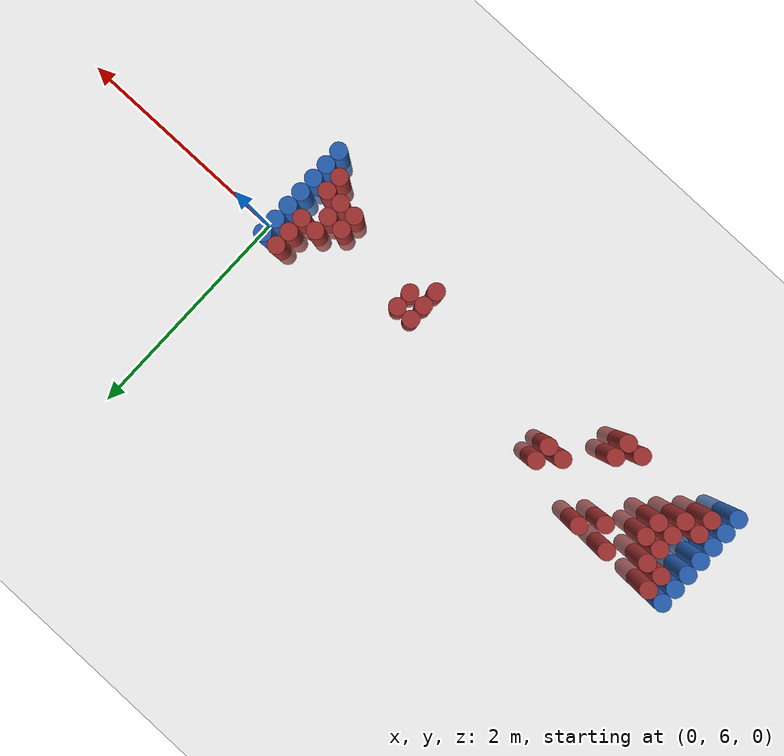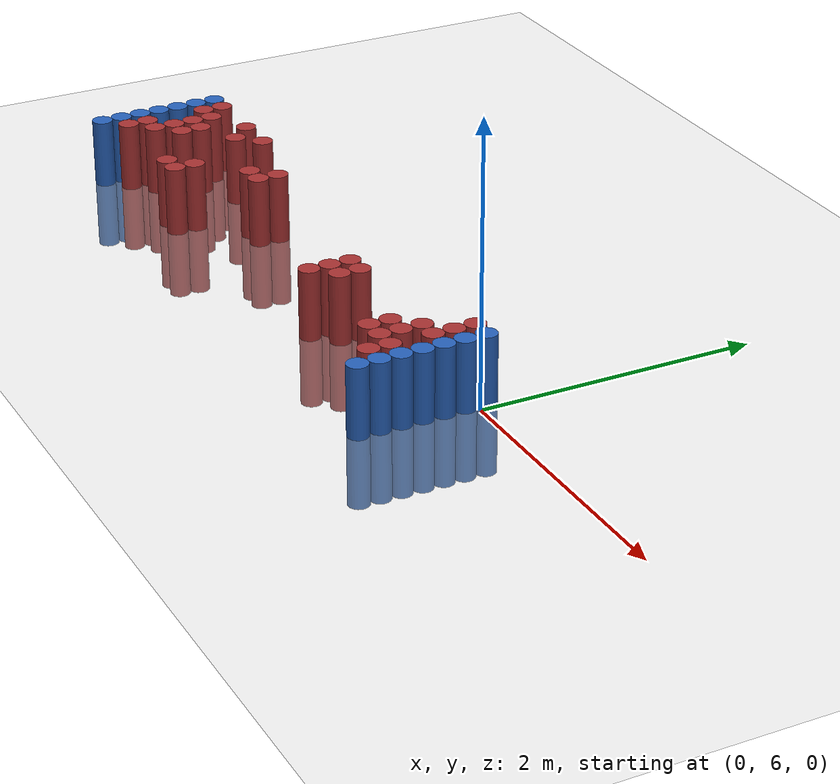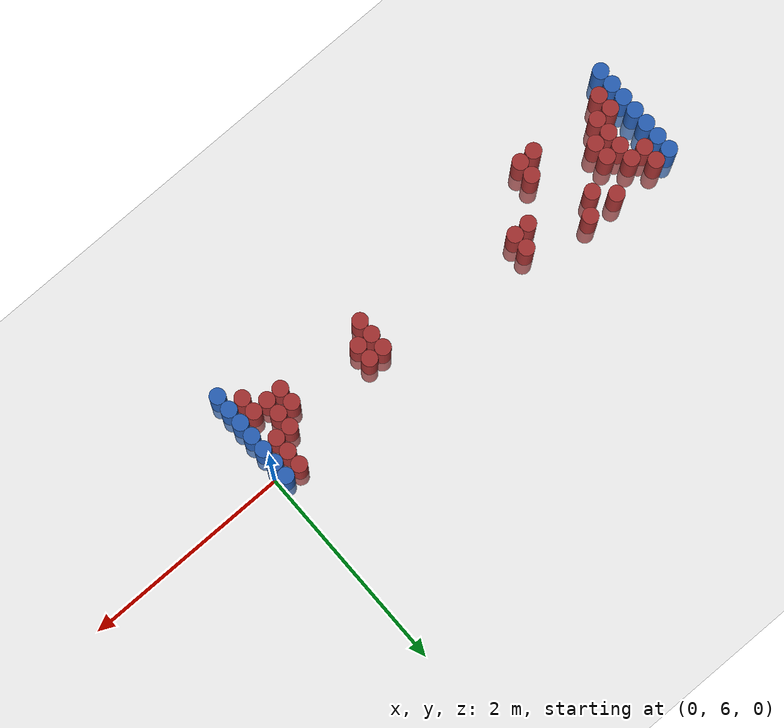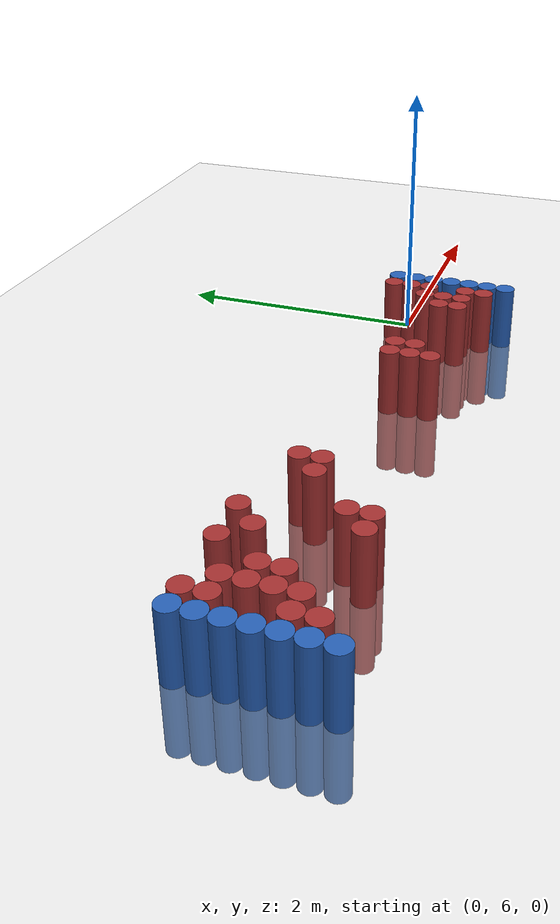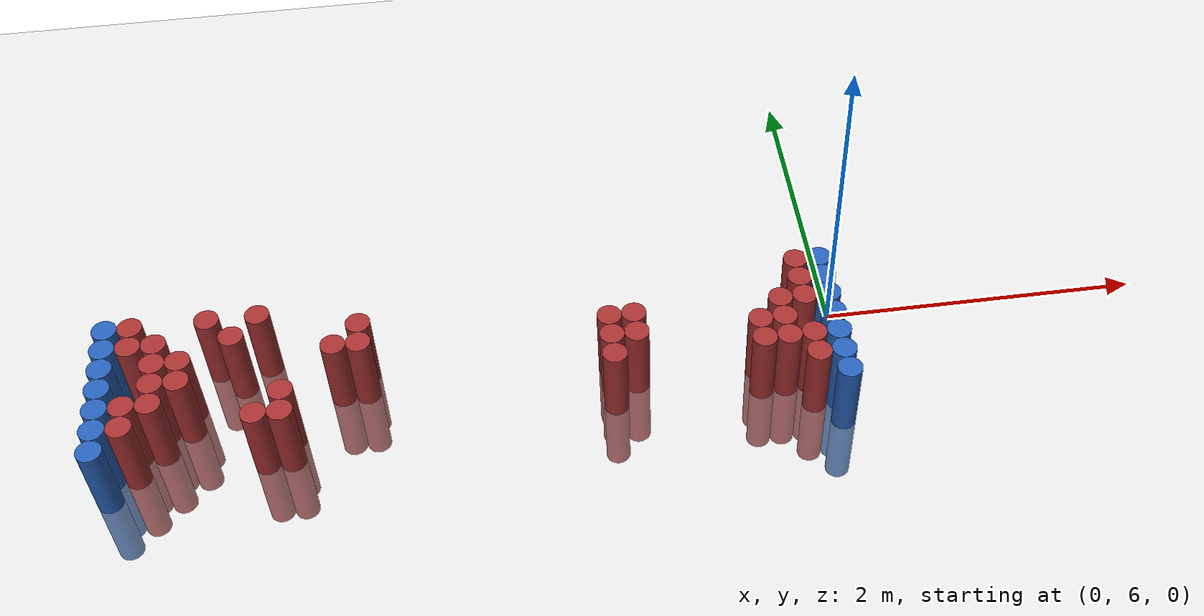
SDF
<sdf version="1.6">
 <world name="default">
  <model name="ground_plane">
   <static>1</static>
   <link name="link">
    <collision name="collision">
     <geometry><plane><normal>0 0 1</normal><size>100 100</size></plane></geometry>
     <surface><friction><ode><mu>100</mu><mu2>50</mu2></ode></friction></surface>
    </collision>
    <visual name="visual">
     <cast_shadows>0</cast_shadows>
     <geometry><plane><normal>0 0 1</normal><size>100 100</size></plane></geometry>
     <material>
      <script><uri>file://media/materials/scripts/gazebo.material</uri><name>Gazebo/Grey</name></script>
     </material>
    </visual>
   </link>
  </model>
  <model name="unit_cylinder_96">
   <static>1</static>
   <pose>-4.425000 5.175000 0.000000 0.000000 0.000000 0.000000</pose>
   <link name="link">
    <inertial>
     <mass>1</mass>
     <inertia><ixx>0.145833</ixx><ixy>0</ixy><ixz>0</ixz><iyy>0.145833</iyy><iyz>0</iyz><izz>0.125</izz></inertia>
    </inertial>
    <collision name="collision">
     <geometry><cylinder><radius>0.075000</radius><length>1</length></cylinder></geometry>
    </collision>
    <visual name="visual">
     <geometry><cylinder><radius>0.075000</radius><length>1</length></cylinder></geometry>
     <material>
      <ambient>0.152000 0.379000 0.720000 1</ambient>
      <diffuse>0.152000 0.379000 0.720000 1</diffuse>
     </material>
     <material>
      <script><name>Gazebo/Grey</name><uri>file://media/materials/scripts/gazebo.material</uri></script>
     </material>
    </visual>
   </link>
  </model>
  <model name="unit_cylinder_97">
   <static>1</static>
   <pose>-4.425000 5.325000 0.000000 0.000000 0.000000 0.000000</pose>
   <link name="link">
    <inertial>
     <mass>1</mass>
     <inertia><ixx>0.145833</ixx><ixy>0</ixy><ixz>0</ixz><iyy>0.145833</iyy><iyz>0</iyz><izz>0.125</izz></inertia>
    </inertial>
    <collision name="collision">
     <geometry><cylinder><radius>0.075000</radius><length>1</length></cylinder></geometry>
    </collision>
    <visual name="visual">
     <geometry><cylinder><radius>0.075000</radius><length>1</length></cylinder></geometry>
     <material>
      <ambient>0.152000 0.379000 0.720000 1</ambient>
      <diffuse>0.152000 0.379000 0.720000 1</diffuse>
     </material>
     <material>
      <script><name>Gazebo/Grey</name><uri>file://media/materials/scripts/gazebo.material</uri></script>
     </material>
    </visual>
   </link>
  </model>
  <model name="unit_cylinder_98">
   <static>1</static>
   <pose>-4.425000 5.475000 0.000000 0.000000 0.000000 0.000000</pose>
   <link name="link">
    <inertial>
     <mass>1</mass>
     <inertia><ixx>0.145833</ixx><ixy>0</ixy><ixz>0</ixz><iyy>0.145833</iyy><iyz>0</iyz><izz>0.125</izz></inertia>
    </inertial>
    <collision name="collision">
     <geometry><cylinder><radius>0.075000</radius><length>1</length></cylinder></geometry>
    </collision>
    <visual name="visual">
     <geometry><cylinder><radius>0.075000</radius><length>1</length></cylinder></geometry>
     <material>
      <ambient>0.152000 0.379000 0.720000 1</ambient>
      <diffuse>0.152000 0.379000 0.720000 1</diffuse>
     </material>
     <material>
      <script><name>Gazebo/Grey</name><uri>file://media/materials/scripts/gazebo.material</uri></script>
     </material>
    </visual>
   </link>
  </model>
  <model name="unit_cylinder_99">
   <static>1</static>
   <pose>-4.425000 5.625000 0.000000 0.000000 0.000000 0.000000</pose>
   <link name="link">
    <inertial>
     <mass>1</mass>
     <inertia><ixx>0.145833</ixx><ixy>0</ixy><ixz>0</ixz><iyy>0.145833</iyy><iyz>0</iyz><izz>0.125</izz></inertia>
    </inertial>
    <collision name="collision">
     <geometry><cylinder><radius>0.075000</radius><length>1</length></cylinder></geometry>
    </collision>
    <visual name="visual">
     <geometry><cylinder><radius>0.075000</radius><length>1</length></cylinder></geometry>
     <material>
      <ambient>0.152000 0.379000 0.720000 1</ambient>
      <diffuse>0.152000 0.379000 0.720000 1</diffuse>
     </material>
     <material>
      <script><name>Gazebo/Grey</name><uri>file://media/materials/scripts/gazebo.material</uri></script>
     </material>
    </visual>
   </link>
  </model>
  <model name="unit_cylinder_100">
   <static>1</static>
   <pose>-4.425000 5.775000 0.000000 0.000000 0.000000 0.000000</pose>
   <link name="link">
    <inertial>
     <mass>1</mass>
     <inertia><ixx>0.145833</ixx><ixy>0</ixy><ixz>0</ixz><iyy>0.145833</iyy><iyz>0</iyz><izz>0.125</izz></inertia>
    </inertial>
    <collision name="collision">
     <geometry><cylinder><radius>0.075000</radius><length>1</length></cylinder></geometry>
    </collision>
    <visual name="visual">
     <geometry><cylinder><radius>0.075000</radius><length>1</length></cylinder></geometry>
     <material>
      <ambient>0.152000 0.379000 0.720000 1</ambient>
      <diffuse>0.152000 0.379000 0.720000 1</diffuse>
     </material>
     <material>
      <script><name>Gazebo/Grey</name><uri>file://media/materials/scripts/gazebo.material</uri></script>
     </material>
    </visual>
   </link>
  </model>
  <model name="unit_cylinder_101">
   <static>1</static>
   <pose>-4.425000 5.925000 0.000000 0.000000 0.000000 0.000000</pose>
   <link name="link">
    <inertial>
     <mass>1</mass>
     <inertia><ixx>0.145833</ixx><ixy>0</ixy><ixz>0</ixz><iyy>0.145833</iyy><iyz>0</iyz><izz>0.125</izz></inertia>
    </inertial>
    <collision name="collision">
     <geometry><cylinder><radius>0.075000</radius><length>1</length></cylinder></geometry>
    </collision>
    <visual name="visual">
     <geometry><cylinder><radius>0.075000</radius><length>1</length></cylinder></geometry>
     <material>
      <ambient>0.152000 0.379000 0.720000 1</ambient>
      <diffuse>0.152000 0.379000 0.720000 1</diffuse>
     </material>
     <material>
      <script><name>Gazebo/Grey</name><uri>file://media/materials/scripts/gazebo.material</uri></script>
     </material>
    </visual>
   </link>
  </model>
  <model name="unit_cylinder_102">
   <static>1</static>
   <pose>-4.425000 6.075000 0.000000 0.000000 0.000000 0.000000</pose>
   <link name="link">
    <inertial>
     <mass>1</mass>
     <inertia><ixx>0.145833</ixx><ixy>0</ixy><ixz>0</ixz><iyy>0.145833</iyy><iyz>0</iyz><izz>0.125</izz></inertia>
    </inertial>
    <collision name="collision">
     <geometry><cylinder><radius>0.075000</radius><length>1</length></cylinder></geometry>
    </collision>
    <visual name="visual">
     <geometry><cylinder><radius>0.075000</radius><length>1</length></cylinder></geometry>
     <material>
      <ambient>0.152000 0.379000 0.720000 1</ambient>
      <diffuse>0.152000 0.379000 0.720000 1</diffuse>
     </material>
     <material>
      <script><name>Gazebo/Grey</name><uri>file://media/materials/scripts/gazebo.material</uri></script>
     </material>
    </visual>
   </link>
  </model>
  <model name="unit_cylinder_126">
   <static>1</static>
   <pose>-4.275000 5.325000 0.000000 0.000000 0.000000 0.000000</pose>
   <link name="link">
    <inertial>
     <mass>1</mass>
     <inertia><ixx>0.145833</ixx><ixy>0</ixy><ixz>0</ixz><iyy>0.145833</iyy><iyz>0</iyz><izz>0.125</izz></inertia>
    </inertial>
    <collision name="collision">
     <geometry><cylinder><radius>0.075000</radius><length>1</length></cylinder></geometry>
    </collision>
    <visual name="visual">
     <geometry><cylinder><radius>0.075000</radius><length>1</length></cylinder></geometry>
     <material>
      <ambient>0.648000 0.192000 0.192000 1</ambient>
      <diffuse>0.648000 0.192000 0.192000 1</diffuse>
     </material>
     <material>
      <script><name>Gazebo/Grey</name><uri>file://media/materials/scripts/gazebo.material</uri></script>
     </material>
    </visual>
   </link>
  </model>
  <model name="unit_cylinder_127">
   <static>1</static>
   <pose>-4.275000 5.475000 0.000000 0.000000 0.000000 0.000000</pose>
   <link name="link">
    <inertial>
     <mass>1</mass>
     <inertia><ixx>0.145833</ixx><ixy>0</ixy><ixz>0</ixz><iyy>0.145833</iyy><iyz>0</iyz><izz>0.125</izz></inertia>
    </inertial>
    <collision name="collision">
     <geometry><cylinder><radius>0.075000</radius><length>1</length></cylinder></geometry>
    </collision>
    <visual name="visual">
     <geometry><cylinder><radius>0.075000</radius><length>1</length></cylinder></geometry>
     <material>
      <ambient>0.648000 0.192000 0.192000 1</ambient>
      <diffuse>0.648000 0.192000 0.192000 1</diffuse>
     </material>
     <material>
      <script><name>Gazebo/Grey</name><uri>file://media/materials/scripts/gazebo.material</uri></script>
     </material>
    </visual>
   </link>
  </model>
  <model name="unit_cylinder_128">
   <static>1</static>
   <pose>-4.275000 5.925000 0.000000 0.000000 0.000000 0.000000</pose>
   <link name="link">
    <inertial>
     <mass>1</mass>
     <inertia><ixx>0.145833</ixx><ixy>0</ixy><ixz>0</ixz><iyy>0.145833</iyy><iyz>0</iyz><izz>0.125</izz></inertia>
    </inertial>
    <collision name="collision">
     <geometry><cylinder><radius>0.075000</radius><length>1</length></cylinder></geometry>
    </collision>
    <visual name="visual">
     <geometry><cylinder><radius>0.075000</radius><length>1</length></cylinder></geometry>
     <material>
      <ambient>0.648000 0.192000 0.192000 1</ambient>
      <diffuse>0.648000 0.192000 0.192000 1</diffuse>
     </material>
     <material>
      <script><name>Gazebo/Grey</name><uri>file://media/materials/scripts/gazebo.material</uri></script>
     </material>
    </visual>
   </link>
  </model>
  <model name="unit_cylinder_129">
   <static>1</static>
   <pose>-4.275000 6.075000 0.000000 0.000000 0.000000 0.000000</pose>
   <link name="link">
    <inertial>
     <mass>1</mass>
     <inertia><ixx>0.145833</ixx><ixy>0</ixy><ixz>0</ixz><iyy>0.145833</iyy><iyz>0</iyz><izz>0.125</izz></inertia>
    </inertial>
    <collision name="collision">
     <geometry><cylinder><radius>0.075000</radius><length>1</length></cylinder></geometry>
    </collision>
    <visual name="visual">
     <geometry><cylinder><radius>0.075000</radius><length>1</length></cylinder></geometry>
     <material>
      <ambient>0.648000 0.192000 0.192000 1</ambient>
      <diffuse>0.648000 0.192000 0.192000 1</diffuse>
     </material>
     <material>
      <script><name>Gazebo/Grey</name><uri>file://media/materials/scripts/gazebo.material</uri></script>
     </material>
    </visual>
   </link>
  </model>
  <model name="unit_cylinder_140">
   <static>1</static>
   <pose>-4.125000 5.475000 0.000000 0.000000 0.000000 0.000000</pose>
   <link name="link">
    <inertial>
     <mass>1</mass>
     <inertia><ixx>0.145833</ixx><ixy>0</ixy><ixz>0</ixz><iyy>0.145833</iyy><iyz>0</iyz><izz>0.125</izz></inertia>
    </inertial>
    <collision name="collision">
     <geometry><cylinder><radius>0.075000</radius><length>1</length></cylinder></geometry>
    </collision>
    <visual name="visual">
     <geometry><cylinder><radius>0.075000</radius><length>1</length></cylinder></geometry>
     <material>
      <ambient>0.648000 0.192000 0.192000 1</ambient>
      <diffuse>0.648000 0.192000 0.192000 1</diffuse>
     </material>
     <material>
      <script><name>Gazebo/Grey</name><uri>file://media/materials/scripts/gazebo.material</uri></script>
     </material>
    </visual>
   </link>
  </model>
  <model name="unit_cylinder_141">
   <static>1</static>
   <pose>-4.125000 5.625000 0.000000 0.000000 0.000000 0.000000</pose>
   <link name="link">
    <inertial>
     <mass>1</mass>
     <inertia><ixx>0.145833</ixx><ixy>0</ixy><ixz>0</ixz><iyy>0.145833</iyy><iyz>0</iyz><izz>0.125</izz></inertia>
    </inertial>
    <collision name="collision">
     <geometry><cylinder><radius>0.075000</radius><length>1</length></cylinder></geometry>
    </collision>
    <visual name="visual">
     <geometry><cylinder><radius>0.075000</radius><length>1</length></cylinder></geometry>
     <material>
      <ambient>0.648000 0.192000 0.192000 1</ambient>
      <diffuse>0.648000 0.192000 0.192000 1</diffuse>
     </material>
     <material>
      <script><name>Gazebo/Grey</name><uri>file://media/materials/scripts/gazebo.material</uri></script>
     </material>
    </visual>
   </link>
  </model>
  <model name="unit_cylinder_142">
   <static>1</static>
   <pose>-4.125000 5.775000 0.000000 0.000000 0.000000 0.000000</pose>
   <link name="link">
    <inertial>
     <mass>1</mass>
     <inertia><ixx>0.145833</ixx><ixy>0</ixy><ixz>0</ixz><iyy>0.145833</iyy><iyz>0</iyz><izz>0.125</izz></inertia>
    </inertial>
    <collision name="collision">
     <geometry><cylinder><radius>0.075000</radius><length>1</length></cylinder></geometry>
    </collision>
    <visual name="visual">
     <geometry><cylinder><radius>0.075000</radius><length>1</length></cylinder></geometry>
     <material>
      <ambient>0.648000 0.192000 0.192000 1</ambient>
      <diffuse>0.648000 0.192000 0.192000 1</diffuse>
     </material>
     <material>
      <script><name>Gazebo/Grey</name><uri>file://media/materials/scripts/gazebo.material</uri></script>
     </material>
    </visual>
   </link>
  </model>
  <model name="unit_cylinder_143">
   <static>1</static>
   <pose>-4.125000 5.925000 0.000000 0.000000 0.000000 0.000000</pose>
   <link name="link">
    <inertial>
     <mass>1</mass>
     <inertia><ixx>0.145833</ixx><ixy>0</ixy><ixz>0</ixz><iyy>0.145833</iyy><iyz>0</iyz><izz>0.125</izz></inertia>
    </inertial>
    <collision name="collision">
     <geometry><cylinder><radius>0.075000</radius><length>1</length></cylinder></geometry>
    </collision>
    <visual name="visual">
     <geometry><cylinder><radius>0.075000</radius><length>1</length></cylinder></geometry>
     <material>
      <ambient>0.648000 0.192000 0.192000 1</ambient>
      <diffuse>0.648000 0.192000 0.192000 1</diffuse>
     </material>
     <material>
      <script><name>Gazebo/Grey</name><uri>file://media/materials/scripts/gazebo.material</uri></script>
     </material>
    </visual>
   </link>
  </model>
  <model name="unit_cylinder_152">
   <static>1</static>
   <pose>-3.975000 5.625000 0.000000 0.000000 0.000000 0.000000</pose>
   <link name="link">
    <inertial>
     <mass>1</mass>
     <inertia><ixx>0.145833</ixx><ixy>0</ixy><ixz>0</ixz><iyy>0.145833</iyy><iyz>0</iyz><izz>0.125</izz></inertia>
    </inertial>
    <collision name="collision">
     <geometry><cylinder><radius>0.075000</radius><length>1</length></cylinder></geometry>
    </collision>
    <visual name="visual">
     <geometry><cylinder><radius>0.075000</radius><length>1</length></cylinder></geometry>
     <material>
      <ambient>0.648000 0.192000 0.192000 1</ambient>
      <diffuse>0.648000 0.192000 0.192000 1</diffuse>
     </material>
     <material>
      <script><name>Gazebo/Grey</name><uri>file://media/materials/scripts/gazebo.material</uri></script>
     </material>
    </visual>
   </link>
  </model>
  <model name="unit_cylinder_153">
   <static>1</static>
   <pose>-3.975000 5.775000 0.000000 0.000000 0.000000 0.000000</pose>
   <link name="link">
    <inertial>
     <mass>1</mass>
     <inertia><ixx>0.145833</ixx><ixy>0</ixy><ixz>0</ixz><iyy>0.145833</iyy><iyz>0</iyz><izz>0.125</izz></inertia>
    </inertial>
    <collision name="collision">
     <geometry><cylinder><radius>0.075000</radius><length>1</length></cylinder></geometry>
    </collision>
    <visual name="visual">
     <geometry><cylinder><radius>0.075000</radius><length>1</length></cylinder></geometry>
     <material>
      <ambient>0.648000 0.192000 0.192000 1</ambient>
      <diffuse>0.648000 0.192000 0.192000 1</diffuse>
     </material>
     <material>
      <script><name>Gazebo/Grey</name><uri>file://media/materials/scripts/gazebo.material</uri></script>
     </material>
    </visual>
   </link>
  </model>
  <model name="unit_cylinder_161">
   <static>1</static>
   <pose>-3.825000 6.075000 0.000000 0.000000 0.000000 0.000000</pose>
   <link name="link">
    <inertial>
     <mass>1</mass>
     <inertia><ixx>0.145833</ixx><ixy>0</ixy><ixz>0</ixz><iyy>0.145833</iyy><iyz>0</iyz><izz>0.125</izz></inertia>
    </inertial>
    <collision name="collision">
     <geometry><cylinder><radius>0.075000</radius><length>1</length></cylinder></geometry>
    </collision>
    <visual name="visual">
     <geometry><cylinder><radius>0.075000</radius><length>1</length></cylinder></geometry>
     <material>
      <ambient>0.648000 0.192000 0.192000 1</ambient>
      <diffuse>0.648000 0.192000 0.192000 1</diffuse>
     </material>
     <material>
      <script><name>Gazebo/Grey</name><uri>file://media/materials/scripts/gazebo.material</uri></script>
     </material>
    </visual>
   </link>
  </model>
  <model name="unit_cylinder_170">
   <static>1</static>
   <pose>-3.675000 5.925000 0.000000 0.000000 0.000000 0.000000</pose>
   <link name="link">
    <inertial>
     <mass>1</mass>
     <inertia><ixx>0.145833</ixx><ixy>0</ixy><ixz>0</ixz><iyy>0.145833</iyy><iyz>0</iyz><izz>0.125</izz></inertia>
    </inertial>
    <collision name="collision">
     <geometry><cylinder><radius>0.075000</radius><length>1</length></cylinder></geometry>
    </collision>
    <visual name="visual">
     <geometry><cylinder><radius>0.075000</radius><length>1</length></cylinder></geometry>
     <material>
      <ambient>0.648000 0.192000 0.192000 1</ambient>
      <diffuse>0.648000 0.192000 0.192000 1</diffuse>
     </material>
     <material>
      <script><name>Gazebo/Grey</name><uri>file://media/materials/scripts/gazebo.material</uri></script>
     </material>
    </visual>
   </link>
  </model>
  <model name="unit_cylinder_176">
   <static>1</static>
   <pose>-3.525000 5.325000 0.000000 0.000000 0.000000 0.000000</pose>
   <link name="link">
    <inertial>
     <mass>1</mass>
     <inertia><ixx>0.145833</ixx><ixy>0</ixy><ixz>0</ixz><iyy>0.145833</iyy><iyz>0</iyz><izz>0.125</izz></inertia>
    </inertial>
    <collision name="collision">
     <geometry><cylinder><radius>0.075000</radius><length>1</length></cylinder></geometry>
    </collision>
    <visual name="visual">
     <geometry><cylinder><radius>0.075000</radius><length>1</length></cylinder></geometry>
     <material>
      <ambient>0.648000 0.192000 0.192000 1</ambient>
      <diffuse>0.648000 0.192000 0.192000 1</diffuse>
     </material>
     <material>
      <script><name>Gazebo/Grey</name><uri>file://media/materials/scripts/gazebo.material</uri></script>
     </material>
    </visual>
   </link>
  </model>
  <model name="unit_cylinder_177">
   <static>1</static>
   <pose>-3.525000 6.075000 0.000000 0.000000 0.000000 0.000000</pose>
   <link name="link">
    <inertial>
     <mass>1</mass>
     <inertia><ixx>0.145833</ixx><ixy>0</ixy><ixz>0</ixz><iyy>0.145833</iyy><iyz>0</iyz><izz>0.125</izz></inertia>
    </inertial>
    <collision name="collision">
     <geometry><cylinder><radius>0.075000</radius><length>1</length></cylinder></geometry>
    </collision>
    <visual name="visual">
     <geometry><cylinder><radius>0.075000</radius><length>1</length></cylinder></geometry>
     <material>
      <ambient>0.648000 0.192000 0.192000 1</ambient>
      <diffuse>0.648000 0.192000 0.192000 1</diffuse>
     </material>
     <material>
      <script><name>Gazebo/Grey</name><uri>file://media/materials/scripts/gazebo.material</uri></script>
     </material>
    </visual>
   </link>
  </model>
  <model name="unit_cylinder_179">
   <static>1</static>
   <pose>-3.375000 5.325000 0.000000 0.000000 0.000000 0.000000</pose>
   <link name="link">
    <inertial>
     <mass>1</mass>
     <inertia><ixx>0.145833</ixx><ixy>0</ixy><ixz>0</ixz><iyy>0.145833</iyy><iyz>0</iyz><izz>0.125</izz></inertia>
    </inertial>
    <collision name="collision">
     <geometry><cylinder><radius>0.075000</radius><length>1</length></cylinder></geometry>
    </collision>
    <visual name="visual">
     <geometry><cylinder><radius>0.075000</radius><length>1</length></cylinder></geometry>
     <material>
      <ambient>0.648000 0.192000 0.192000 1</ambient>
      <diffuse>0.648000 0.192000 0.192000 1</diffuse>
     </material>
     <material>
      <script><name>Gazebo/Grey</name><uri>file://media/materials/scripts/gazebo.material</uri></script>
     </material>
    </visual>
   </link>
  </model>
  <model name="unit_cylinder_180">
   <static>1</static>
   <pose>-3.375000 5.475000 0.000000 0.000000 0.000000 0.000000</pose>
   <link name="link">
    <inertial>
     <mass>1</mass>
     <inertia><ixx>0.145833</ixx><ixy>0</ixy><ixz>0</ixz><iyy>0.145833</iyy><iyz>0</iyz><izz>0.125</izz></inertia>
    </inertial>
    <collision name="collision">
     <geometry><cylinder><radius>0.075000</radius><length>1</length></cylinder></geometry>
    </collision>
    <visual name="visual">
     <geometry><cylinder><radius>0.075000</radius><length>1</length></cylinder></geometry>
     <material>
      <ambient>0.648000 0.192000 0.192000 1</ambient>
      <diffuse>0.648000 0.192000 0.192000 1</diffuse>
     </material>
     <material>
      <script><name>Gazebo/Grey</name><uri>file://media/materials/scripts/gazebo.material</uri></script>
     </material>
    </visual>
   </link>
  </model>
  <model name="unit_cylinder_184">
   <static>1</static>
   <pose>-3.075000 5.775000 0.000000 0.000000 0.000000 0.000000</pose>
   <link name="link">
    <inertial>
     <mass>1</mass>
     <inertia><ixx>0.145833</ixx><ixy>0</ixy><ixz>0</ixz><iyy>0.145833</iyy><iyz>0</iyz><izz>0.125</izz></inertia>
    </inertial>
    <collision name="collision">
     <geometry><cylinder><radius>0.075000</radius><length>1</length></cylinder></geometry>
    </collision>
    <visual name="visual">
     <geometry><cylinder><radius>0.075000</radius><length>1</length></cylinder></geometry>
     <material>
      <ambient>0.648000 0.192000 0.192000 1</ambient>
      <diffuse>0.648000 0.192000 0.192000 1</diffuse>
     </material>
     <material>
      <script><name>Gazebo/Grey</name><uri>file://media/materials/scripts/gazebo.material</uri></script>
     </material>
    </visual>
   </link>
  </model>
  <model name="unit_cylinder_188">
   <static>1</static>
   <pose>-2.925000 5.775000 0.000000 0.000000 0.000000 0.000000</pose>
   <link name="link">
    <inertial>
     <mass>1</mass>
     <inertia><ixx>0.145833</ixx><ixy>0</ixy><ixz>0</ixz><iyy>0.145833</iyy><iyz>0</iyz><izz>0.125</izz></inertia>
    </inertial>
    <collision name="collision">
     <geometry><cylinder><radius>0.075000</radius><length>1</length></cylinder></geometry>
    </collision>
    <visual name="visual">
     <geometry><cylinder><radius>0.075000</radius><length>1</length></cylinder></geometry>
     <material>
      <ambient>0.648000 0.192000 0.192000 1</ambient>
      <diffuse>0.648000 0.192000 0.192000 1</diffuse>
     </material>
     <material>
      <script><name>Gazebo/Grey</name><uri>file://media/materials/scripts/gazebo.material</uri></script>
     </material>
    </visual>
   </link>
  </model>
  <model name="unit_cylinder_189">
   <static>1</static>
   <pose>-2.925000 5.925000 0.000000 0.000000 0.000000 0.000000</pose>
   <link name="link">
    <inertial>
     <mass>1</mass>
     <inertia><ixx>0.145833</ixx><ixy>0</ixy><ixz>0</ixz><iyy>0.145833</iyy><iyz>0</iyz><izz>0.125</izz></inertia>
    </inertial>
    <collision name="collision">
     <geometry><cylinder><radius>0.075000</radius><length>1</length></cylinder></geometry>
    </collision>
    <visual name="visual">
     <geometry><cylinder><radius>0.075000</radius><length>1</length></cylinder></geometry>
     <material>
      <ambient>0.648000 0.192000 0.192000 1</ambient>
      <diffuse>0.648000 0.192000 0.192000 1</diffuse>
     </material>
     <material>
      <script><name>Gazebo/Grey</name><uri>file://media/materials/scripts/gazebo.material</uri></script>
     </material>
    </visual>
   </link>
  </model>
  <model name="unit_cylinder_197">
   <static>1</static>
   <pose>-1.425000 5.475000 0.000000 0.000000 0.000000 0.000000</pose>
   <link name="link">
    <inertial>
     <mass>1</mass>
     <inertia><ixx>0.145833</ixx><ixy>0</ixy><ixz>0</ixz><iyy>0.145833</iyy><iyz>0</iyz><izz>0.125</izz></inertia>
    </inertial>
    <collision name="collision">
     <geometry><cylinder><radius>0.075000</radius><length>1</length></cylinder></geometry>
    </collision>
    <visual name="visual">
     <geometry><cylinder><radius>0.075000</radius><length>1</length></cylinder></geometry>
     <material>
      <ambient>0.648000 0.192000 0.192000 1</ambient>
      <diffuse>0.648000 0.192000 0.192000 1</diffuse>
     </material>
     <material>
      <script><name>Gazebo/Grey</name><uri>file://media/materials/scripts/gazebo.material</uri></script>
     </material>
    </visual>
   </link>
  </model>
  <model name="unit_cylinder_198">
   <static>1</static>
   <pose>-1.425000 5.625000 0.000000 0.000000 0.000000 0.000000</pose>
   <link name="link">
    <inertial>
     <mass>1</mass>
     <inertia><ixx>0.145833</ixx><ixy>0</ixy><ixz>0</ixz><iyy>0.145833</iyy><iyz>0</iyz><izz>0.125</izz></inertia>
    </inertial>
    <collision name="collision">
     <geometry><cylinder><radius>0.075000</radius><length>1</length></cylinder></geometry>
    </collision>
    <visual name="visual">
     <geometry><cylinder><radius>0.075000</radius><length>1</length></cylinder></geometry>
     <material>
      <ambient>0.648000 0.192000 0.192000 1</ambient>
      <diffuse>0.648000 0.192000 0.192000 1</diffuse>
     </material>
     <material>
      <script><name>Gazebo/Grey</name><uri>file://media/materials/scripts/gazebo.material</uri></script>
     </material>
    </visual>
   </link>
  </model>
  <model name="unit_cylinder_199">
   <static>1</static>
   <pose>-1.425000 5.775000 0.000000 0.000000 0.000000 0.000000</pose>
   <link name="link">
    <inertial>
     <mass>1</mass>
     <inertia><ixx>0.145833</ixx><ixy>0</ixy><ixz>0</ixz><iyy>0.145833</iyy><iyz>0</iyz><izz>0.125</izz></inertia>
    </inertial>
    <collision name="collision">
     <geometry><cylinder><radius>0.075000</radius><length>1</length></cylinder></geometry>
    </collision>
    <visual name="visual">
     <geometry><cylinder><radius>0.075000</radius><length>1</length></cylinder></geometry>
     <material>
      <ambient>0.648000 0.192000 0.192000 1</ambient>
      <diffuse>0.648000 0.192000 0.192000 1</diffuse>
     </material>
     <material>
      <script><name>Gazebo/Grey</name><uri>file://media/materials/scripts/gazebo.material</uri></script>
     </material>
    </visual>
   </link>
  </model>
  <model name="unit_cylinder_206">
   <static>1</static>
   <pose>-1.275000 5.625000 0.000000 0.000000 0.000000 0.000000</pose>
   <link name="link">
    <inertial>
     <mass>1</mass>
     <inertia><ixx>0.145833</ixx><ixy>0</ixy><ixz>0</ixz><iyy>0.145833</iyy><iyz>0</iyz><izz>0.125</izz></inertia>
    </inertial>
    <collision name="collision">
     <geometry><cylinder><radius>0.075000</radius><length>1</length></cylinder></geometry>
    </collision>
    <visual name="visual">
     <geometry><cylinder><radius>0.075000</radius><length>1</length></cylinder></geometry>
     <material>
      <ambient>0.648000 0.192000 0.192000 1</ambient>
      <diffuse>0.648000 0.192000 0.192000 1</diffuse>
     </material>
     <material>
      <script><name>Gazebo/Grey</name><uri>file://media/materials/scripts/gazebo.material</uri></script>
     </material>
    </visual>
   </link>
  </model>
  <model name="unit_cylinder_207">
   <static>1</static>
   <pose>-1.275000 5.775000 0.000000 0.000000 0.000000 0.000000</pose>
   <link name="link">
    <inertial>
     <mass>1</mass>
     <inertia><ixx>0.145833</ixx><ixy>0</ixy><ixz>0</ixz><iyy>0.145833</iyy><iyz>0</iyz><izz>0.125</izz></inertia>
    </inertial>
    <collision name="collision">
     <geometry><cylinder><radius>0.075000</radius><length>1</length></cylinder></geometry>
    </collision>
    <visual name="visual">
     <geometry><cylinder><radius>0.075000</radius><length>1</length></cylinder></geometry>
     <material>
      <ambient>0.648000 0.192000 0.192000 1</ambient>
      <diffuse>0.648000 0.192000 0.192000 1</diffuse>
     </material>
     <material>
      <script><name>Gazebo/Grey</name><uri>file://media/materials/scripts/gazebo.material</uri></script>
     </material>
    </visual>
   </link>
  </model>
  <model name="unit_cylinder_232">
   <static>1</static>
   <pose>-0.525000 5.475000 0.000000 0.000000 0.000000 0.000000</pose>
   <link name="link">
    <inertial>
     <mass>1</mass>
     <inertia><ixx>0.145833</ixx><ixy>0</ixy><ixz>0</ixz><iyy>0.145833</iyy><iyz>0</iyz><izz>0.125</izz></inertia>
    </inertial>
    <collision name="collision">
     <geometry><cylinder><radius>0.075000</radius><length>1</length></cylinder></geometry>
    </collision>
    <visual name="visual">
     <geometry><cylinder><radius>0.075000</radius><length>1</length></cylinder></geometry>
     <material>
      <ambient>0.648000 0.192000 0.192000 1</ambient>
      <diffuse>0.648000 0.192000 0.192000 1</diffuse>
     </material>
     <material>
      <script><name>Gazebo/Grey</name><uri>file://media/materials/scripts/gazebo.material</uri></script>
     </material>
    </visual>
   </link>
  </model>
  <model name="unit_cylinder_233">
   <static>1</static>
   <pose>-0.525000 5.625000 0.000000 0.000000 0.000000 0.000000</pose>
   <link name="link">
    <inertial>
     <mass>1</mass>
     <inertia><ixx>0.145833</ixx><ixy>0</ixy><ixz>0</ixz><iyy>0.145833</iyy><iyz>0</iyz><izz>0.125</izz></inertia>
    </inertial>
    <collision name="collision">
     <geometry><cylinder><radius>0.075000</radius><length>1</length></cylinder></geometry>
    </collision>
    <visual name="visual">
     <geometry><cylinder><radius>0.075000</radius><length>1</length></cylinder></geometry>
     <material>
      <ambient>0.648000 0.192000 0.192000 1</ambient>
      <diffuse>0.648000 0.192000 0.192000 1</diffuse>
     </material>
     <material>
      <script><name>Gazebo/Grey</name><uri>file://media/materials/scripts/gazebo.material</uri></script>
     </material>
    </visual>
   </link>
  </model>
  <model name="unit_cylinder_236">
   <static>1</static>
   <pose>-0.375000 5.475000 0.000000 0.000000 0.000000 0.000000</pose>
   <link name="link">
    <inertial>
     <mass>1</mass>
     <inertia><ixx>0.145833</ixx><ixy>0</ixy><ixz>0</ixz><iyy>0.145833</iyy><iyz>0</iyz><izz>0.125</izz></inertia>
    </inertial>
    <collision name="collision">
     <geometry><cylinder><radius>0.075000</radius><length>1</length></cylinder></geometry>
    </collision>
    <visual name="visual">
     <geometry><cylinder><radius>0.075000</radius><length>1</length></cylinder></geometry>
     <material>
      <ambient>0.648000 0.192000 0.192000 1</ambient>
      <diffuse>0.648000 0.192000 0.192000 1</diffuse>
     </material>
     <material>
      <script><name>Gazebo/Grey</name><uri>file://media/materials/scripts/gazebo.material</uri></script>
     </material>
    </visual>
   </link>
  </model>
  <model name="unit_cylinder_237">
   <static>1</static>
   <pose>-0.375000 5.625000 0.000000 0.000000 0.000000 0.000000</pose>
   <link name="link">
    <inertial>
     <mass>1</mass>
     <inertia><ixx>0.145833</ixx><ixy>0</ixy><ixz>0</ixz><iyy>0.145833</iyy><iyz>0</iyz><izz>0.125</izz></inertia>
    </inertial>
    <collision name="collision">
     <geometry><cylinder><radius>0.075000</radius><length>1</length></cylinder></geometry>
    </collision>
    <visual name="visual">
     <geometry><cylinder><radius>0.075000</radius><length>1</length></cylinder></geometry>
     <material>
      <ambient>0.648000 0.192000 0.192000 1</ambient>
      <diffuse>0.648000 0.192000 0.192000 1</diffuse>
     </material>
     <material>
      <script><name>Gazebo/Grey</name><uri>file://media/materials/scripts/gazebo.material</uri></script>
     </material>
    </visual>
   </link>
  </model>
  <model name="unit_cylinder_238">
   <static>1</static>
   <pose>-0.375000 5.775000 0.000000 0.000000 0.000000 0.000000</pose>
   <link name="link">
    <inertial>
     <mass>1</mass>
     <inertia><ixx>0.145833</ixx><ixy>0</ixy><ixz>0</ixz><iyy>0.145833</iyy><iyz>0</iyz><izz>0.125</izz></inertia>
    </inertial>
    <collision name="collision">
     <geometry><cylinder><radius>0.075000</radius><length>1</length></cylinder></geometry>
    </collision>
    <visual name="visual">
     <geometry><cylinder><radius>0.075000</radius><length>1</length></cylinder></geometry>
     <material>
      <ambient>0.648000 0.192000 0.192000 1</ambient>
      <diffuse>0.648000 0.192000 0.192000 1</diffuse>
     </material>
     <material>
      <script><name>Gazebo/Grey</name><uri>file://media/materials/scripts/gazebo.material</uri></script>
     </material>
    </visual>
   </link>
  </model>
  <model name="unit_cylinder_244">
   <static>1</static>
   <pose>-0.225000 5.325000 0.000000 0.000000 0.000000 0.000000</pose>
   <link name="link">
    <inertial>
     <mass>1</mass>
     <inertia><ixx>0.145833</ixx><ixy>0</ixy><ixz>0</ixz><iyy>0.145833</iyy><iyz>0</iyz><izz>0.125</izz></inertia>
    </inertial>
    <collision name="collision">
     <geometry><cylinder><radius>0.075000</radius><length>1</length></cylinder></geometry>
    </collision>
    <visual name="visual">
     <geometry><cylinder><radius>0.075000</radius><length>1</length></cylinder></geometry>
     <material>
      <ambient>0.648000 0.192000 0.192000 1</ambient>
      <diffuse>0.648000 0.192000 0.192000 1</diffuse>
     </material>
     <material>
      <script><name>Gazebo/Grey</name><uri>file://media/materials/scripts/gazebo.material</uri></script>
     </material>
    </visual>
   </link>
  </model>
  <model name="unit_cylinder_245">
   <static>1</static>
   <pose>-0.225000 5.475000 0.000000 0.000000 0.000000 0.000000</pose>
   <link name="link">
    <inertial>
     <mass>1</mass>
     <inertia><ixx>0.145833</ixx><ixy>0</ixy><ixz>0</ixz><iyy>0.145833</iyy><iyz>0</iyz><izz>0.125</izz></inertia>
    </inertial>
    <collision name="collision">
     <geometry><cylinder><radius>0.075000</radius><length>1</length></cylinder></geometry>
    </collision>
    <visual name="visual">
     <geometry><cylinder><radius>0.075000</radius><length>1</length></cylinder></geometry>
     <material>
      <ambient>0.648000 0.192000 0.192000 1</ambient>
      <diffuse>0.648000 0.192000 0.192000 1</diffuse>
     </material>
     <material>
      <script><name>Gazebo/Grey</name><uri>file://media/materials/scripts/gazebo.material</uri></script>
     </material>
    </visual>
   </link>
  </model>
  <model name="unit_cylinder_246">
   <static>1</static>
   <pose>-0.225000 5.775000 0.000000 0.000000 0.000000 0.000000</pose>
   <link name="link">
    <inertial>
     <mass>1</mass>
     <inertia><ixx>0.145833</ixx><ixy>0</ixy><ixz>0</ixz><iyy>0.145833</iyy><iyz>0</iyz><izz>0.125</izz></inertia>
    </inertial>
    <collision name="collision">
     <geometry><cylinder><radius>0.075000</radius><length>1</length></cylinder></geometry>
    </collision>
    <visual name="visual">
     <geometry><cylinder><radius>0.075000</radius><length>1</length></cylinder></geometry>
     <material>
      <ambient>0.648000 0.192000 0.192000 1</ambient>
      <diffuse>0.648000 0.192000 0.192000 1</diffuse>
     </material>
     <material>
      <script><name>Gazebo/Grey</name><uri>file://media/materials/scripts/gazebo.material</uri></script>
     </material>
    </visual>
   </link>
  </model>
  <model name="unit_cylinder_247">
   <static>1</static>
   <pose>-0.225000 5.925000 0.000000 0.000000 0.000000 0.000000</pose>
   <link name="link">
    <inertial>
     <mass>1</mass>
     <inertia><ixx>0.145833</ixx><ixy>0</ixy><ixz>0</ixz><iyy>0.145833</iyy><iyz>0</iyz><izz>0.125</izz></inertia>
    </inertial>
    <collision name="collision">
     <geometry><cylinder><radius>0.075000</radius><length>1</length></cylinder></geometry>
    </collision>
    <visual name="visual">
     <geometry><cylinder><radius>0.075000</radius><length>1</length></cylinder></geometry>
     <material>
      <ambient>0.648000 0.192000 0.192000 1</ambient>
      <diffuse>0.648000 0.192000 0.192000 1</diffuse>
     </material>
     <material>
      <script><name>Gazebo/Grey</name><uri>file://media/materials/scripts/gazebo.material</uri></script>
     </material>
    </visual>
   </link>
  </model>
  <model name="unit_cylinder_248">
   <static>1</static>
   <pose>-0.225000 6.075000 0.000000 0.000000 0.000000 0.000000</pose>
   <link name="link">
    <inertial>
     <mass>1</mass>
     <inertia><ixx>0.145833</ixx><ixy>0</ixy><ixz>0</ixz><iyy>0.145833</iyy><iyz>0</iyz><izz>0.125</izz></inertia>
    </inertial>
    <collision name="collision">
     <geometry><cylinder><radius>0.075000</radius><length>1</length></cylinder></geometry>
    </collision>
    <visual name="visual">
     <geometry><cylinder><radius>0.075000</radius><length>1</length></cylinder></geometry>
     <material>
      <ambient>0.648000 0.192000 0.192000 1</ambient>
      <diffuse>0.648000 0.192000 0.192000 1</diffuse>
     </material>
     <material>
      <script><name>Gazebo/Grey</name><uri>file://media/materials/scripts/gazebo.material</uri></script>
     </material>
    </visual>
   </link>
  </model>
  <model name="unit_cylinder_259">
   <static>1</static>
   <pose>-0.075000 5.175000 0.000000 0.000000 0.000000 0.000000</pose>
   <link name="link">
    <inertial>
     <mass>1</mass>
     <inertia><ixx>0.145833</ixx><ixy>0</ixy><ixz>0</ixz><iyy>0.145833</iyy><iyz>0</iyz><izz>0.125</izz></inertia>
    </inertial>
    <collision name="collision">
     <geometry><cylinder><radius>0.075000</radius><length>1</length></cylinder></geometry>
    </collision>
    <visual name="visual">
     <geometry><cylinder><radius>0.075000</radius><length>1</length></cylinder></geometry>
     <material>
      <ambient>0.152000 0.379000 0.720000 1</ambient>
      <diffuse>0.152000 0.379000 0.720000 1</diffuse>
     </material>
     <material>
      <script><name>Gazebo/Grey</name><uri>file://media/materials/scripts/gazebo.material</uri></script>
     </material>
    </visual>
   </link>
  </model>
  <model name="unit_cylinder_260">
   <static>1</static>
   <pose>-0.075000 5.325000 0.000000 0.000000 0.000000 0.000000</pose>
   <link name="link">
    <inertial>
     <mass>1</mass>
     <inertia><ixx>0.145833</ixx><ixy>0</ixy><ixz>0</ixz><iyy>0.145833</iyy><iyz>0</iyz><izz>0.125</izz></inertia>
    </inertial>
    <collision name="collision">
     <geometry><cylinder><radius>0.075000</radius><length>1</length></cylinder></geometry>
    </collision>
    <visual name="visual">
     <geometry><cylinder><radius>0.075000</radius><length>1</length></cylinder></geometry>
     <material>
      <ambient>0.152000 0.379000 0.720000 1</ambient>
      <diffuse>0.152000 0.379000 0.720000 1</diffuse>
     </material>
     <material>
      <script><name>Gazebo/Grey</name><uri>file://media/materials/scripts/gazebo.material</uri></script>
     </material>
    </visual>
   </link>
  </model>
  <model name="unit_cylinder_261">
   <static>1</static>
   <pose>-0.075000 5.475000 0.000000 0.000000 0.000000 0.000000</pose>
   <link name="link">
    <inertial>
     <mass>1</mass>
     <inertia><ixx>0.145833</ixx><ixy>0</ixy><ixz>0</ixz><iyy>0.145833</iyy><iyz>0</iyz><izz>0.125</izz></inertia>
    </inertial>
    <collision name="collision">
     <geometry><cylinder><radius>0.075000</radius><length>1</length></cylinder></geometry>
    </collision>
    <visual name="visual">
     <geometry><cylinder><radius>0.075000</radius><length>1</length></cylinder></geometry>
     <material>
      <ambient>0.152000 0.379000 0.720000 1</ambient>
      <diffuse>0.152000 0.379000 0.720000 1</diffuse>
     </material>
     <material>
      <script><name>Gazebo/Grey</name><uri>file://media/materials/scripts/gazebo.material</uri></script>
     </material>
    </visual>
   </link>
  </model>
  <model name="unit_cylinder_262">
   <static>1</static>
   <pose>-0.075000 5.625000 0.000000 0.000000 0.000000 0.000000</pose>
   <link name="link">
    <inertial>
     <mass>1</mass>
     <inertia><ixx>0.145833</ixx><ixy>0</ixy><ixz>0</ixz><iyy>0.145833</iyy><iyz>0</iyz><izz>0.125</izz></inertia>
    </inertial>
    <collision name="collision">
     <geometry><cylinder><radius>0.075000</radius><length>1</length></cylinder></geometry>
    </collision>
    <visual name="visual">
     <geometry><cylinder><radius>0.075000</radius><length>1</length></cylinder></geometry>
     <material>
      <ambient>0.152000 0.379000 0.720000 1</ambient>
      <diffuse>0.152000 0.379000 0.720000 1</diffuse>
     </material>
     <material>
      <script><name>Gazebo/Grey</name><uri>file://media/materials/scripts/gazebo.material</uri></script>
     </material>
    </visual>
   </link>
  </model>
  <model name="unit_cylinder_263">
   <static>1</static>
   <pose>-0.075000 5.775000 0.000000 0.000000 0.000000 0.000000</pose>
   <link name="link">
    <inertial>
     <mass>1</mass>
     <inertia><ixx>0.145833</ixx><ixy>0</ixy><ixz>0</ixz><iyy>0.145833</iyy><iyz>0</iyz><izz>0.125</izz></inertia>
    </inertial>
    <collision name="collision">
     <geometry><cylinder><radius>0.075000</radius><length>1</length></cylinder></geometry>
    </collision>
    <visual name="visual">
     <geometry><cylinder><radius>0.075000</radius><length>1</length></cylinder></geometry>
     <material>
      <ambient>0.152000 0.379000 0.720000 1</ambient>
      <diffuse>0.152000 0.379000 0.720000 1</diffuse>
     </material>
     <material>
      <script><name>Gazebo/Grey</name><uri>file://media/materials/scripts/gazebo.material</uri></script>
     </material>
    </visual>
   </link>
  </model>
  <model name="unit_cylinder_264">
   <static>1</static>
   <pose>-0.075000 5.925000 0.000000 0.000000 0.000000 0.000000</pose>
   <link name="link">
    <inertial>
     <mass>1</mass>
     <inertia><ixx>0.145833</ixx><ixy>0</ixy><ixz>0</ixz><iyy>0.145833</iyy><iyz>0</iyz><izz>0.125</izz></inertia>
    </inertial>
    <collision name="collision">
     <geometry><cylinder><radius>0.075000</radius><length>1</length></cylinder></geometry>
    </collision>
    <visual name="visual">
     <geometry><cylinder><radius>0.075000</radius><length>1</length></cylinder></geometry>
     <material>
      <ambient>0.152000 0.379000 0.720000 1</ambient>
      <diffuse>0.152000 0.379000 0.720000 1</diffuse>
     </material>
     <material>
      <script><name>Gazebo/Grey</name><uri>file://media/materials/scripts/gazebo.material</uri></script>
     </material>
    </visual>
   </link>
  </model>
  <model name="unit_cylinder_265">
   <static>1</static>
   <pose>-0.075000 6.075000 0.000000 0.000000 0.000000 0.000000</pose>
   <link name="link">
    <inertial>
     <mass>1</mass>
     <inertia><ixx>0.145833</ixx><ixy>0</ixy><ixz>0</ixz><iyy>0.145833</iyy><iyz>0</iyz><izz>0.125</izz></inertia>
    </inertial>
    <collision name="collision">
     <geometry><cylinder><radius>0.075000</radius><length>1</length></cylinder></geometry>
    </collision>
    <visual name="visual">
     <geometry><cylinder><radius>0.075000</radius><length>1</length></cylinder></geometry>
     <material>
      <ambient>0.152000 0.379000 0.720000 1</ambient>
      <diffuse>0.152000 0.379000 0.720000 1</diffuse>
     </material>
     <material>
      <script><name>Gazebo/Grey</name><uri>file://media/materials/scripts/gazebo.material</uri></script>
     </material>
    </visual>
   </link>
  </model>
 </world>
</sdf>
